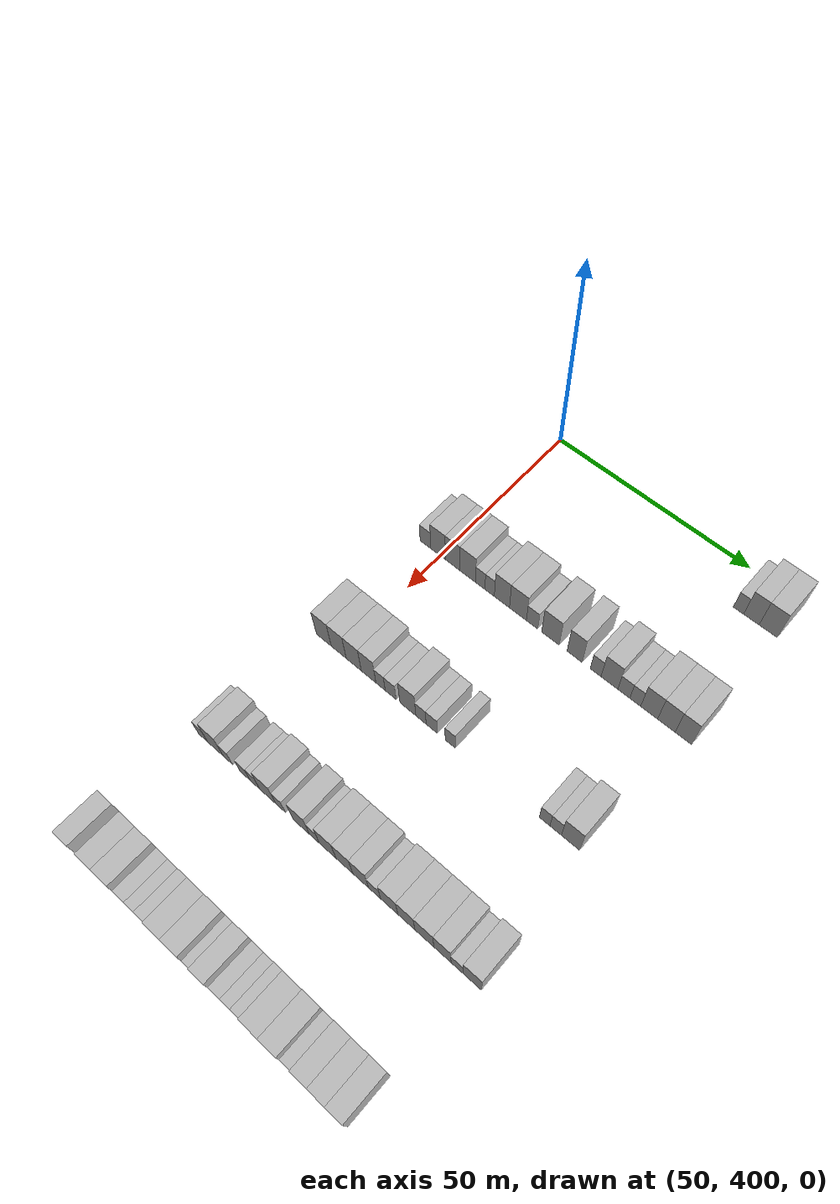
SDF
<sdf version="1.6">
 <world name="default">
  <model name="building_465">
   <static>1</static>
   <pose>55.0000 453.8659 0 0.000000 0.000000 0.000000</pose>
   <link name="link">
    <pose>0 0 3.00 0 0 0</pose>
    <collision name="collision"><geometry><box><size>10.0000 2.4791 6.0000</size></box></geometry></collision>
    <visual name="visual">
     <cast_shadows>0</cast_shadows>
     <geometry><box><size>10.0000 2.4791 6.0000</size></box></geometry>
     <material>
      <script>
       <uri>model://HANNAS_wall/materials/scripts</uri>
       <uri>model://HANNAS_wall/materials/textures</uri>
       <name>vrc/HANNAS_wall</name>
      </script>
     </material>
    </visual>
   </link>
  </model>
  <model name="building_466">
   <static>1</static>
   <pose>55.0000 456.9601 0 0.000000 0.000000 0.000000</pose>
   <link name="link">
    <pose>0 0 4.50 0 0 0</pose>
    <collision name="collision"><geometry><box><size>10.0000 3.7093 9.0000</size></box></geometry></collision>
    <visual name="visual">
     <cast_shadows>0</cast_shadows>
     <geometry><box><size>10.0000 3.7093 9.0000</size></box></geometry>
     <material>
      <script>
       <uri>model://HANNAS_wall/materials/scripts</uri>
       <uri>model://HANNAS_wall/materials/textures</uri>
       <name>vrc/HANNAS_wall</name>
      </script>
     </material>
    </visual>
   </link>
  </model>
  <model name="building_467">
   <static>1</static>
   <pose>55.0000 460.9842 0 0.000000 0.000000 0.000000</pose>
   <link name="link">
    <pose>0 0 4.50 0 0 0</pose>
    <collision name="collision"><geometry><box><size>10.0000 4.3388 9.0000</size></box></geometry></collision>
    <visual name="visual">
     <cast_shadows>0</cast_shadows>
     <geometry><box><size>10.0000 4.3388 9.0000</size></box></geometry>
     <material>
      <script>
       <uri>model://HANNAS_wall/materials/scripts</uri>
       <uri>model://HANNAS_wall/materials/textures</uri>
       <name>vrc/HANNAS_wall</name>
      </script>
     </material>
    </visual>
   </link>
  </model>
  <model name="building_676">
   <static>1</static>
   <pose>85.0000 395.7364 0 0.000000 0.000000 0.000000</pose>
   <link name="link">
    <pose>0 0 3.00 0 0 0</pose>
    <collision name="collision"><geometry><box><size>10.0000 2.9932 6.0000</size></box></geometry></collision>
    <visual name="visual">
     <cast_shadows>0</cast_shadows>
     <geometry><box><size>10.0000 2.9932 6.0000</size></box></geometry>
     <material>
      <script>
       <uri>model://HANNAS_wall/materials/scripts</uri>
       <uri>model://HANNAS_wall/materials/textures</uri>
       <name>vrc/HANNAS_wall</name>
      </script>
     </material>
    </visual>
   </link>
  </model>
  <model name="building_677">
   <static>1</static>
   <pose>85.0000 399.2727 0 0.000000 0.000000 0.000000</pose>
   <link name="link">
    <pose>0 0 4.50 0 0 0</pose>
    <collision name="collision"><geometry><box><size>10.0000 4.0794 9.0000</size></box></geometry></collision>
    <visual name="visual">
     <cast_shadows>0</cast_shadows>
     <geometry><box><size>10.0000 4.0794 9.0000</size></box></geometry>
     <material>
      <script>
       <uri>model://HANNAS_wall/materials/scripts</uri>
       <uri>model://HANNAS_wall/materials/textures</uri>
       <name>vrc/HANNAS_wall</name>
      </script>
     </material>
    </visual>
   </link>
  </model>
  <model name="building_678">
   <static>1</static>
   <pose>85.0000 403.3088 0 0.000000 0.000000 0.000000</pose>
   <link name="link">
    <pose>0 0 4.50 0 0 0</pose>
    <collision name="collision"><geometry><box><size>10.0000 3.9930 9.0000</size></box></geometry></collision>
    <visual name="visual">
     <cast_shadows>0</cast_shadows>
     <geometry><box><size>10.0000 3.9930 9.0000</size></box></geometry>
     <material>
      <script>
       <uri>model://HANNAS_wall/materials/scripts</uri>
       <uri>model://HANNAS_wall/materials/textures</uri>
       <name>vrc/HANNAS_wall</name>
      </script>
     </material>
    </visual>
   </link>
  </model>
  <model name="building_679">
   <static>1</static>
   <pose>85.0000 407.4338 0 0.000000 0.000000 0.000000</pose>
   <link name="link">
    <pose>0 0 4.50 0 0 0</pose>
    <collision name="collision"><geometry><box><size>10.0000 4.2570 9.0000</size></box></geometry></collision>
    <visual name="visual">
     <cast_shadows>0</cast_shadows>
     <geometry><box><size>10.0000 4.2570 9.0000</size></box></geometry>
     <material>
      <script>
       <uri>model://HANNAS_wall/materials/scripts</uri>
       <uri>model://HANNAS_wall/materials/textures</uri>
       <name>vrc/HANNAS_wall</name>
      </script>
     </material>
    </visual>
   </link>
  </model>
  <model name="building_680">
   <static>1</static>
   <pose>85.0000 410.8199 0 0.000000 0.000000 0.000000</pose>
   <link name="link">
    <pose>0 0 3.00 0 0 0</pose>
    <collision name="collision"><geometry><box><size>10.0000 2.5152 6.0000</size></box></geometry></collision>
    <visual name="visual">
     <cast_shadows>0</cast_shadows>
     <geometry><box><size>10.0000 2.5152 6.0000</size></box></geometry>
     <material>
      <script>
       <uri>model://HANNAS_wall/materials/scripts</uri>
       <uri>model://HANNAS_wall/materials/textures</uri>
       <name>vrc/HANNAS_wall</name>
      </script>
     </material>
    </visual>
   </link>
  </model>
  <model name="building_681">
   <static>1</static>
   <pose>85.0000 413.3407 0 0.000000 0.000000 0.000000</pose>
   <link name="link">
    <pose>0 0 3.00 0 0 0</pose>
    <collision name="collision"><geometry><box><size>10.0000 2.5262 6.0000</size></box></geometry></collision>
    <visual name="visual">
     <cast_shadows>0</cast_shadows>
     <geometry><box><size>10.0000 2.5262 6.0000</size></box></geometry>
     <material>
      <script>
       <uri>model://HANNAS_wall/materials/scripts</uri>
       <uri>model://HANNAS_wall/materials/textures</uri>
       <name>vrc/HANNAS_wall</name>
      </script>
     </material>
    </visual>
   </link>
  </model>
  <model name="building_682">
   <static>1</static>
   <pose>85.0000 416.6098 0 0.000000 0.000000 0.000000</pose>
   <link name="link">
    <pose>0 0 4.50 0 0 0</pose>
    <collision name="collision"><geometry><box><size>10.0000 4.0121 9.0000</size></box></geometry></collision>
    <visual name="visual">
     <cast_shadows>0</cast_shadows>
     <geometry><box><size>10.0000 4.0121 9.0000</size></box></geometry>
     <material>
      <script>
       <uri>model://HANNAS_wall/materials/scripts</uri>
       <uri>model://HANNAS_wall/materials/textures</uri>
       <name>vrc/HANNAS_wall</name>
      </script>
     </material>
    </visual>
   </link>
  </model>
  <model name="building_683">
   <static>1</static>
   <pose>85.0000 420.8285 0 0.000000 0.000000 0.000000</pose>
   <link name="link">
    <pose>0 0 4.50 0 0 0</pose>
    <collision name="collision"><geometry><box><size>10.0000 4.4253 9.0000</size></box></geometry></collision>
    <visual name="visual">
     <cast_shadows>0</cast_shadows>
     <geometry><box><size>10.0000 4.4253 9.0000</size></box></geometry>
     <material>
      <script>
       <uri>model://HANNAS_wall/materials/scripts</uri>
       <uri>model://HANNAS_wall/materials/textures</uri>
       <name>vrc/HANNAS_wall</name>
      </script>
     </material>
    </visual>
   </link>
  </model>
  <model name="building_684">
   <static>1</static>
   <pose>85.0000 424.5215 0 0.000000 0.000000 0.000000</pose>
   <link name="link">
    <pose>0 0 3.00 0 0 0</pose>
    <collision name="collision"><geometry><box><size>10.0000 2.9607 6.0000</size></box></geometry></collision>
    <visual name="visual">
     <cast_shadows>0</cast_shadows>
     <geometry><box><size>10.0000 2.9607 6.0000</size></box></geometry>
     <material>
      <script>
       <uri>model://HANNAS_wall/materials/scripts</uri>
       <uri>model://HANNAS_wall/materials/textures</uri>
       <name>vrc/HANNAS_wall</name>
      </script>
     </material>
    </visual>
   </link>
  </model>
  <model name="building_685">
   <static>1</static>
   <pose>85.0000 429.2509 0 0.000000 0.000000 0.000000</pose>
   <link name="link">
    <pose>0 0 4.50 0 0 0</pose>
    <collision name="collision"><geometry><box><size>10.0000 4.4982 9.0000</size></box></geometry></collision>
    <visual name="visual">
     <cast_shadows>0</cast_shadows>
     <geometry><box><size>10.0000 4.4982 9.0000</size></box></geometry>
     <material>
      <script>
       <uri>model://HANNAS_wall/materials/scripts</uri>
       <uri>model://HANNAS_wall/materials/textures</uri>
       <name>vrc/HANNAS_wall</name>
      </script>
     </material>
    </visual>
   </link>
  </model>
  <model name="building_686">
   <static>1</static>
   <pose>85.0000 435.4053 0 0.000000 0.000000 0.000000</pose>
   <link name="link">
    <pose>0 0 4.50 0 0 0</pose>
    <collision name="collision"><geometry><box><size>10.0000 3.8105 9.0000</size></box></geometry></collision>
    <visual name="visual">
     <cast_shadows>0</cast_shadows>
     <geometry><box><size>10.0000 3.8105 9.0000</size></box></geometry>
     <material>
      <script>
       <uri>model://HANNAS_wall/materials/scripts</uri>
       <uri>model://HANNAS_wall/materials/textures</uri>
       <name>vrc/HANNAS_wall</name>
      </script>
     </material>
    </visual>
   </link>
  </model>
  <model name="building_687">
   <static>1</static>
   <pose>85.0000 440.6461 0 0.000000 0.000000 0.000000</pose>
   <link name="link">
    <pose>0 0 3.00 0 0 0</pose>
    <collision name="collision"><geometry><box><size>10.0000 2.6710 6.0000</size></box></geometry></collision>
    <visual name="visual">
     <cast_shadows>0</cast_shadows>
     <geometry><box><size>10.0000 2.6710 6.0000</size></box></geometry>
     <material>
      <script>
       <uri>model://HANNAS_wall/materials/scripts</uri>
       <uri>model://HANNAS_wall/materials/textures</uri>
       <name>vrc/HANNAS_wall</name>
      </script>
     </material>
    </visual>
   </link>
  </model>
  <model name="building_688">
   <static>1</static>
   <pose>85.0000 444.0336 0 0.000000 0.000000 0.000000</pose>
   <link name="link">
    <pose>0 0 4.50 0 0 0</pose>
    <collision name="collision"><geometry><box><size>10.0000 4.1040 9.0000</size></box></geometry></collision>
    <visual name="visual">
     <cast_shadows>0</cast_shadows>
     <geometry><box><size>10.0000 4.1040 9.0000</size></box></geometry>
     <material>
      <script>
       <uri>model://HANNAS_wall/materials/scripts</uri>
       <uri>model://HANNAS_wall/materials/textures</uri>
       <name>vrc/HANNAS_wall</name>
      </script>
     </material>
    </visual>
   </link>
  </model>
  <model name="building_689">
   <static>1</static>
   <pose>85.0000 447.5393 0 0.000000 0.000000 0.000000</pose>
   <link name="link">
    <pose>0 0 3.00 0 0 0</pose>
    <collision name="collision"><geometry><box><size>10.0000 2.9075 6.0000</size></box></geometry></collision>
    <visual name="visual">
     <cast_shadows>0</cast_shadows>
     <geometry><box><size>10.0000 2.9075 6.0000</size></box></geometry>
     <material>
      <script>
       <uri>model://HANNAS_wall/materials/scripts</uri>
       <uri>model://HANNAS_wall/materials/textures</uri>
       <name>vrc/HANNAS_wall</name>
      </script>
     </material>
    </visual>
   </link>
  </model>
  <model name="building_690">
   <static>1</static>
   <pose>85.0000 450.2974 0 0.000000 0.000000 0.000000</pose>
   <link name="link">
    <pose>0 0 3.00 0 0 0</pose>
    <collision name="collision"><geometry><box><size>10.0000 2.6086 6.0000</size></box></geometry></collision>
    <visual name="visual">
     <cast_shadows>0</cast_shadows>
     <geometry><box><size>10.0000 2.6086 6.0000</size></box></geometry>
     <material>
      <script>
       <uri>model://HANNAS_wall/materials/scripts</uri>
       <uri>model://HANNAS_wall/materials/textures</uri>
       <name>vrc/HANNAS_wall</name>
      </script>
     </material>
    </visual>
   </link>
  </model>
  <model name="building_691">
   <static>1</static>
   <pose>85.0000 453.6111 0 0.000000 0.000000 0.000000</pose>
   <link name="link">
    <pose>0 0 4.50 0 0 0</pose>
    <collision name="collision"><geometry><box><size>10.0000 4.0189 9.0000</size></box></geometry></collision>
    <visual name="visual">
     <cast_shadows>0</cast_shadows>
     <geometry><box><size>10.0000 4.0189 9.0000</size></box></geometry>
     <material>
      <script>
       <uri>model://HANNAS_wall/materials/scripts</uri>
       <uri>model://HANNAS_wall/materials/textures</uri>
       <name>vrc/HANNAS_wall</name>
      </script>
     </material>
    </visual>
   </link>
  </model>
  <model name="building_692">
   <static>1</static>
   <pose>85.0000 457.6810 0 0.000000 0.000000 0.000000</pose>
   <link name="link">
    <pose>0 0 4.50 0 0 0</pose>
    <collision name="collision"><geometry><box><size>10.0000 4.1208 9.0000</size></box></geometry></collision>
    <visual name="visual">
     <cast_shadows>0</cast_shadows>
     <geometry><box><size>10.0000 4.1208 9.0000</size></box></geometry>
     <material>
      <script>
       <uri>model://HANNAS_wall/materials/scripts</uri>
       <uri>model://HANNAS_wall/materials/textures</uri>
       <name>vrc/HANNAS_wall</name>
      </script>
     </material>
    </visual>
   </link>
  </model>
  <model name="building_693">
   <static>1</static>
   <pose>85.0000 461.6534 0 0.000000 0.000000 0.000000</pose>
   <link name="link">
    <pose>0 0 4.50 0 0 0</pose>
    <collision name="collision"><geometry><box><size>10.0000 3.8239 9.0000</size></box></geometry></collision>
    <visual name="visual">
     <cast_shadows>0</cast_shadows>
     <geometry><box><size>10.0000 3.8239 9.0000</size></box></geometry>
     <material>
      <script>
       <uri>model://HANNAS_wall/materials/scripts</uri>
       <uri>model://HANNAS_wall/materials/textures</uri>
       <name>vrc/HANNAS_wall</name>
      </script>
     </material>
    </visual>
   </link>
  </model>
  <model name="building_902">
   <static>1</static>
   <pose>115.0000 395.5870 0 0.000000 0.000000 0.000000</pose>
   <link name="link">
    <pose>0 0 4.50 0 0 0</pose>
    <collision name="collision"><geometry><box><size>10.0000 4.1374 9.0000</size></box></geometry></collision>
    <visual name="visual">
     <cast_shadows>0</cast_shadows>
     <geometry><box><size>10.0000 4.1374 9.0000</size></box></geometry>
     <material>
      <script>
       <uri>model://HANNAS_wall/materials/scripts</uri>
       <uri>model://HANNAS_wall/materials/textures</uri>
       <name>vrc/HANNAS_wall</name>
      </script>
     </material>
    </visual>
   </link>
  </model>
  <model name="building_903">
   <static>1</static>
   <pose>115.0000 399.7177 0 0.000000 0.000000 0.000000</pose>
   <link name="link">
    <pose>0 0 4.50 0 0 0</pose>
    <collision name="collision"><geometry><box><size>10.0000 4.1240 9.0000</size></box></geometry></collision>
    <visual name="visual">
     <cast_shadows>0</cast_shadows>
     <geometry><box><size>10.0000 4.1240 9.0000</size></box></geometry>
     <material>
      <script>
       <uri>model://HANNAS_wall/materials/scripts</uri>
       <uri>model://HANNAS_wall/materials/textures</uri>
       <name>vrc/HANNAS_wall</name>
      </script>
     </material>
    </visual>
   </link>
  </model>
  <model name="building_904">
   <static>1</static>
   <pose>115.0000 403.8346 0 0.000000 0.000000 0.000000</pose>
   <link name="link">
    <pose>0 0 4.50 0 0 0</pose>
    <collision name="collision"><geometry><box><size>10.0000 4.1097 9.0000</size></box></geometry></collision>
    <visual name="visual">
     <cast_shadows>0</cast_shadows>
     <geometry><box><size>10.0000 4.1097 9.0000</size></box></geometry>
     <material>
      <script>
       <uri>model://HANNAS_wall/materials/scripts</uri>
       <uri>model://HANNAS_wall/materials/textures</uri>
       <name>vrc/HANNAS_wall</name>
      </script>
     </material>
    </visual>
   </link>
  </model>
  <model name="building_905">
   <static>1</static>
   <pose>115.0000 407.8457 0 0.000000 0.000000 0.000000</pose>
   <link name="link">
    <pose>0 0 4.50 0 0 0</pose>
    <collision name="collision"><geometry><box><size>10.0000 3.9125 9.0000</size></box></geometry></collision>
    <visual name="visual">
     <cast_shadows>0</cast_shadows>
     <geometry><box><size>10.0000 3.9125 9.0000</size></box></geometry>
     <material>
      <script>
       <uri>model://HANNAS_wall/materials/scripts</uri>
       <uri>model://HANNAS_wall/materials/textures</uri>
       <name>vrc/HANNAS_wall</name>
      </script>
     </material>
    </visual>
   </link>
  </model>
  <model name="building_906">
   <static>1</static>
   <pose>115.0000 411.0444 0 0.000000 0.000000 0.000000</pose>
   <link name="link">
    <pose>0 0 3.00 0 0 0</pose>
    <collision name="collision"><geometry><box><size>10.0000 2.4851 6.0000</size></box></geometry></collision>
    <visual name="visual">
     <cast_shadows>0</cast_shadows>
     <geometry><box><size>10.0000 2.4851 6.0000</size></box></geometry>
     <material>
      <script>
       <uri>model://HANNAS_wall/materials/scripts</uri>
       <uri>model://HANNAS_wall/materials/textures</uri>
       <name>vrc/HANNAS_wall</name>
      </script>
     </material>
    </visual>
   </link>
  </model>
  <model name="building_907">
   <static>1</static>
   <pose>115.0000 413.7233 0 0.000000 0.000000 0.000000</pose>
   <link name="link">
    <pose>0 0 3.00 0 0 0</pose>
    <collision name="collision"><geometry><box><size>10.0000 2.8728 6.0000</size></box></geometry></collision>
    <visual name="visual">
     <cast_shadows>0</cast_shadows>
     <geometry><box><size>10.0000 2.8728 6.0000</size></box></geometry>
     <material>
      <script>
       <uri>model://HANNAS_wall/materials/scripts</uri>
       <uri>model://HANNAS_wall/materials/textures</uri>
       <name>vrc/HANNAS_wall</name>
      </script>
     </material>
    </visual>
   </link>
  </model>
  <model name="building_908">
   <static>1</static>
   <pose>115.0000 418.2313 0 0.000000 0.000000 0.000000</pose>
   <link name="link">
    <pose>0 0 4.50 0 0 0</pose>
    <collision name="collision"><geometry><box><size>10.0000 4.1431 9.0000</size></box></geometry></collision>
    <visual name="visual">
     <cast_shadows>0</cast_shadows>
     <geometry><box><size>10.0000 4.1431 9.0000</size></box></geometry>
     <material>
      <script>
       <uri>model://HANNAS_wall/materials/scripts</uri>
       <uri>model://HANNAS_wall/materials/textures</uri>
       <name>vrc/HANNAS_wall</name>
      </script>
     </material>
    </visual>
   </link>
  </model>
  <model name="building_909">
   <static>1</static>
   <pose>115.0000 421.6405 0 0.000000 0.000000 0.000000</pose>
   <link name="link">
    <pose>0 0 3.00 0 0 0</pose>
    <collision name="collision"><geometry><box><size>10.0000 2.6754 6.0000</size></box></geometry></collision>
    <visual name="visual">
     <cast_shadows>0</cast_shadows>
     <geometry><box><size>10.0000 2.6754 6.0000</size></box></geometry>
     <material>
      <script>
       <uri>model://HANNAS_wall/materials/scripts</uri>
       <uri>model://HANNAS_wall/materials/textures</uri>
       <name>vrc/HANNAS_wall</name>
      </script>
     </material>
    </visual>
   </link>
  </model>
  <model name="building_910">
   <static>1</static>
   <pose>115.0000 424.4130 0 0.000000 0.000000 0.000000</pose>
   <link name="link">
    <pose>0 0 3.00 0 0 0</pose>
    <collision name="collision"><geometry><box><size>10.0000 2.8697 6.0000</size></box></geometry></collision>
    <visual name="visual">
     <cast_shadows>0</cast_shadows>
     <geometry><box><size>10.0000 2.8697 6.0000</size></box></geometry>
     <material>
      <script>
       <uri>model://HANNAS_wall/materials/scripts</uri>
       <uri>model://HANNAS_wall/materials/textures</uri>
       <name>vrc/HANNAS_wall</name>
      </script>
     </material>
    </visual>
   </link>
  </model>
  <model name="building_911">
   <static>1</static>
   <pose>115.0000 429.1271 0 0.000000 0.000000 0.000000</pose>
   <link name="link">
    <pose>0 0 3.00 0 0 0</pose>
    <collision name="collision"><geometry><box><size>10.0000 2.5583 6.0000</size></box></geometry></collision>
    <visual name="visual">
     <cast_shadows>0</cast_shadows>
     <geometry><box><size>10.0000 2.5583 6.0000</size></box></geometry>
     <material>
      <script>
       <uri>model://HANNAS_wall/materials/scripts</uri>
       <uri>model://HANNAS_wall/materials/textures</uri>
       <name>vrc/HANNAS_wall</name>
      </script>
     </material>
    </visual>
   </link>
  </model>
  <model name="building_912">
   <static>1</static>
   <pose>115.0000 452.1090 0 0.000000 0.000000 0.000000</pose>
   <link name="link">
    <pose>0 0 3.00 0 0 0</pose>
    <collision name="collision"><geometry><box><size>10.0000 2.4685 6.0000</size></box></geometry></collision>
    <visual name="visual">
     <cast_shadows>0</cast_shadows>
     <geometry><box><size>10.0000 2.4685 6.0000</size></box></geometry>
     <material>
      <script>
       <uri>model://HANNAS_wall/materials/scripts</uri>
       <uri>model://HANNAS_wall/materials/textures</uri>
       <name>vrc/HANNAS_wall</name>
      </script>
     </material>
    </visual>
   </link>
  </model>
  <model name="building_913">
   <static>1</static>
   <pose>115.0000 454.6882 0 0.000000 0.000000 0.000000</pose>
   <link name="link">
    <pose>0 0 3.00 0 0 0</pose>
    <collision name="collision"><geometry><box><size>10.0000 2.6899 6.0000</size></box></geometry></collision>
    <visual name="visual">
     <cast_shadows>0</cast_shadows>
     <geometry><box><size>10.0000 2.6899 6.0000</size></box></geometry>
     <material>
      <script>
       <uri>model://HANNAS_wall/materials/scripts</uri>
       <uri>model://HANNAS_wall/materials/textures</uri>
       <name>vrc/HANNAS_wall</name>
      </script>
     </material>
    </visual>
   </link>
  </model>
  <model name="building_914">
   <static>1</static>
   <pose>115.0000 458.1373 0 0.000000 0.000000 0.000000</pose>
   <link name="link">
    <pose>0 0 4.50 0 0 0</pose>
    <collision name="collision"><geometry><box><size>10.0000 4.2083 9.0000</size></box></geometry></collision>
    <visual name="visual">
     <cast_shadows>0</cast_shadows>
     <geometry><box><size>10.0000 4.2083 9.0000</size></box></geometry>
     <material>
      <script>
       <uri>model://HANNAS_wall/materials/scripts</uri>
       <uri>model://HANNAS_wall/materials/textures</uri>
       <name>vrc/HANNAS_wall</name>
      </script>
     </material>
    </visual>
   </link>
  </model>
  <model name="building_1127">
   <static>1</static>
   <pose>145.0000 393.1069 0 0.000000 0.000000 0.000000</pose>
   <link name="link">
    <pose>0 0 3.00 0 0 0</pose>
    <collision name="collision"><geometry><box><size>10.0000 2.6031 6.0000</size></box></geometry></collision>
    <visual name="visual">
     <cast_shadows>0</cast_shadows>
     <geometry><box><size>10.0000 2.6031 6.0000</size></box></geometry>
     <material>
      <script>
       <uri>model://HANNAS_wall/materials/scripts</uri>
       <uri>model://HANNAS_wall/materials/textures</uri>
       <name>vrc/HANNAS_wall</name>
      </script>
     </material>
    </visual>
   </link>
  </model>
  <model name="building_1128">
   <static>1</static>
   <pose>145.0000 396.5897 0 0.000000 0.000000 0.000000</pose>
   <link name="link">
    <pose>0 0 4.50 0 0 0</pose>
    <collision name="collision"><geometry><box><size>10.0000 4.3624 9.0000</size></box></geometry></collision>
    <visual name="visual">
     <cast_shadows>0</cast_shadows>
     <geometry><box><size>10.0000 4.3624 9.0000</size></box></geometry>
     <material>
      <script>
       <uri>model://HANNAS_wall/materials/scripts</uri>
       <uri>model://HANNAS_wall/materials/textures</uri>
       <name>vrc/HANNAS_wall</name>
      </script>
     </material>
    </visual>
   </link>
  </model>
  <model name="building_1129">
   <static>1</static>
   <pose>145.0000 400.0212 0 0.000000 0.000000 0.000000</pose>
   <link name="link">
    <pose>0 0 3.00 0 0 0</pose>
    <collision name="collision"><geometry><box><size>10.0000 2.5007 6.0000</size></box></geometry></collision>
    <visual name="visual">
     <cast_shadows>0</cast_shadows>
     <geometry><box><size>10.0000 2.5007 6.0000</size></box></geometry>
     <material>
      <script>
       <uri>model://HANNAS_wall/materials/scripts</uri>
       <uri>model://HANNAS_wall/materials/textures</uri>
       <name>vrc/HANNAS_wall</name>
      </script>
     </material>
    </visual>
   </link>
  </model>
  <model name="building_1130">
   <static>1</static>
   <pose>145.0000 404.6392 0 0.000000 0.000000 0.000000</pose>
   <link name="link">
    <pose>0 0 3.00 0 0 0</pose>
    <collision name="collision"><geometry><box><size>10.0000 2.7352 6.0000</size></box></geometry></collision>
    <visual name="visual">
     <cast_shadows>0</cast_shadows>
     <geometry><box><size>10.0000 2.7352 6.0000</size></box></geometry>
     <material>
      <script>
       <uri>model://HANNAS_wall/materials/scripts</uri>
       <uri>model://HANNAS_wall/materials/textures</uri>
       <name>vrc/HANNAS_wall</name>
      </script>
     </material>
    </visual>
   </link>
  </model>
  <model name="building_1131">
   <static>1</static>
   <pose>145.0000 407.2774 0 0.000000 0.000000 0.000000</pose>
   <link name="link">
    <pose>0 0 3.00 0 0 0</pose>
    <collision name="collision"><geometry><box><size>10.0000 2.5413 6.0000</size></box></geometry></collision>
    <visual name="visual">
     <cast_shadows>0</cast_shadows>
     <geometry><box><size>10.0000 2.5413 6.0000</size></box></geometry>
     <material>
      <script>
       <uri>model://HANNAS_wall/materials/scripts</uri>
       <uri>model://HANNAS_wall/materials/textures</uri>
       <name>vrc/HANNAS_wall</name>
      </script>
     </material>
    </visual>
   </link>
  </model>
  <model name="building_1132">
   <static>1</static>
   <pose>145.0000 410.6952 0 0.000000 0.000000 0.000000</pose>
   <link name="link">
    <pose>0 0 4.50 0 0 0</pose>
    <collision name="collision"><geometry><box><size>10.0000 4.2943 9.0000</size></box></geometry></collision>
    <visual name="visual">
     <cast_shadows>0</cast_shadows>
     <geometry><box><size>10.0000 4.2943 9.0000</size></box></geometry>
     <material>
      <script>
       <uri>model://HANNAS_wall/materials/scripts</uri>
       <uri>model://HANNAS_wall/materials/textures</uri>
       <name>vrc/HANNAS_wall</name>
      </script>
     </material>
    </visual>
   </link>
  </model>
  <model name="building_1133">
   <static>1</static>
   <pose>145.0000 414.0902 0 0.000000 0.000000 0.000000</pose>
   <link name="link">
    <pose>0 0 3.00 0 0 0</pose>
    <collision name="collision"><geometry><box><size>10.0000 2.4958 6.0000</size></box></geometry></collision>
    <visual name="visual">
     <cast_shadows>0</cast_shadows>
     <geometry><box><size>10.0000 2.4958 6.0000</size></box></geometry>
     <material>
      <script>
       <uri>model://HANNAS_wall/materials/scripts</uri>
       <uri>model://HANNAS_wall/materials/textures</uri>
       <name>vrc/HANNAS_wall</name>
      </script>
     </material>
    </visual>
   </link>
  </model>
  <model name="building_1134">
   <static>1</static>
   <pose>145.0000 419.4567 0 0.000000 0.000000 0.000000</pose>
   <link name="link">
    <pose>0 0 4.50 0 0 0</pose>
    <collision name="collision"><geometry><box><size>10.0000 4.2370 9.0000</size></box></geometry></collision>
    <visual name="visual">
     <cast_shadows>0</cast_shadows>
     <geometry><box><size>10.0000 4.2370 9.0000</size></box></geometry>
     <material>
      <script>
       <uri>model://HANNAS_wall/materials/scripts</uri>
       <uri>model://HANNAS_wall/materials/textures</uri>
       <name>vrc/HANNAS_wall</name>
      </script>
     </material>
    </visual>
   </link>
  </model>
  <model name="building_1135">
   <static>1</static>
   <pose>145.0000 422.8314 0 0.000000 0.000000 0.000000</pose>
   <link name="link">
    <pose>0 0 3.00 0 0 0</pose>
    <collision name="collision"><geometry><box><size>10.0000 2.5125 6.0000</size></box></geometry></collision>
    <visual name="visual">
     <cast_shadows>0</cast_shadows>
     <geometry><box><size>10.0000 2.5125 6.0000</size></box></geometry>
     <material>
      <script>
       <uri>model://HANNAS_wall/materials/scripts</uri>
       <uri>model://HANNAS_wall/materials/textures</uri>
       <name>vrc/HANNAS_wall</name>
      </script>
     </material>
    </visual>
   </link>
  </model>
  <model name="building_1136">
   <static>1</static>
   <pose>145.0000 426.2048 0 0.000000 0.000000 0.000000</pose>
   <link name="link">
    <pose>0 0 4.50 0 0 0</pose>
    <collision name="collision"><geometry><box><size>10.0000 4.2343 9.0000</size></box></geometry></collision>
    <visual name="visual">
     <cast_shadows>0</cast_shadows>
     <geometry><box><size>10.0000 4.2343 9.0000</size></box></geometry>
     <material>
      <script>
       <uri>model://HANNAS_wall/materials/scripts</uri>
       <uri>model://HANNAS_wall/materials/textures</uri>
       <name>vrc/HANNAS_wall</name>
      </script>
     </material>
    </visual>
   </link>
  </model>
  <model name="building_1137">
   <static>1</static>
   <pose>145.0000 430.3958 0 0.000000 0.000000 0.000000</pose>
   <link name="link">
    <pose>0 0 4.50 0 0 0</pose>
    <collision name="collision"><geometry><box><size>10.0000 4.1477 9.0000</size></box></geometry></collision>
    <visual name="visual">
     <cast_shadows>0</cast_shadows>
     <geometry><box><size>10.0000 4.1477 9.0000</size></box></geometry>
     <material>
      <script>
       <uri>model://HANNAS_wall/materials/scripts</uri>
       <uri>model://HANNAS_wall/materials/textures</uri>
       <name>vrc/HANNAS_wall</name>
      </script>
     </material>
    </visual>
   </link>
  </model>
  <model name="building_1138">
   <static>1</static>
   <pose>145.0000 434.4161 0 0.000000 0.000000 0.000000</pose>
   <link name="link">
    <pose>0 0 4.50 0 0 0</pose>
    <collision name="collision"><geometry><box><size>10.0000 3.8928 9.0000</size></box></geometry></collision>
    <visual name="visual">
     <cast_shadows>0</cast_shadows>
     <geometry><box><size>10.0000 3.8928 9.0000</size></box></geometry>
     <material>
      <script>
       <uri>model://HANNAS_wall/materials/scripts</uri>
       <uri>model://HANNAS_wall/materials/textures</uri>
       <name>vrc/HANNAS_wall</name>
      </script>
     </material>
    </visual>
   </link>
  </model>
  <model name="building_1139">
   <static>1</static>
   <pose>145.0000 437.8063 0 0.000000 0.000000 0.000000</pose>
   <link name="link">
    <pose>0 0 3.00 0 0 0</pose>
    <collision name="collision"><geometry><box><size>10.0000 2.8875 6.0000</size></box></geometry></collision>
    <visual name="visual">
     <cast_shadows>0</cast_shadows>
     <geometry><box><size>10.0000 2.8875 6.0000</size></box></geometry>
     <material>
      <script>
       <uri>model://HANNAS_wall/materials/scripts</uri>
       <uri>model://HANNAS_wall/materials/textures</uri>
       <name>vrc/HANNAS_wall</name>
      </script>
     </material>
    </visual>
   </link>
  </model>
  <model name="building_1140">
   <static>1</static>
   <pose>145.0000 441.3272 0 0.000000 0.000000 0.000000</pose>
   <link name="link">
    <pose>0 0 4.50 0 0 0</pose>
    <collision name="collision"><geometry><box><size>10.0000 4.1544 9.0000</size></box></geometry></collision>
    <visual name="visual">
     <cast_shadows>0</cast_shadows>
     <geometry><box><size>10.0000 4.1544 9.0000</size></box></geometry>
     <material>
      <script>
       <uri>model://HANNAS_wall/materials/scripts</uri>
       <uri>model://HANNAS_wall/materials/textures</uri>
       <name>vrc/HANNAS_wall</name>
      </script>
     </material>
    </visual>
   </link>
  </model>
  <model name="building_1141">
   <static>1</static>
   <pose>145.0000 445.4171 0 0.000000 0.000000 0.000000</pose>
   <link name="link">
    <pose>0 0 4.50 0 0 0</pose>
    <collision name="collision"><geometry><box><size>10.0000 4.0254 9.0000</size></box></geometry></collision>
    <visual name="visual">
     <cast_shadows>0</cast_shadows>
     <geometry><box><size>10.0000 4.0254 9.0000</size></box></geometry>
     <material>
      <script>
       <uri>model://HANNAS_wall/materials/scripts</uri>
       <uri>model://HANNAS_wall/materials/textures</uri>
       <name>vrc/HANNAS_wall</name>
      </script>
     </material>
    </visual>
   </link>
  </model>
  <model name="building_1142">
   <static>1</static>
   <pose>145.0000 449.6283 0 0.000000 0.000000 0.000000</pose>
   <link name="link">
    <pose>0 0 4.50 0 0 0</pose>
    <collision name="collision"><geometry><box><size>10.0000 4.3969 9.0000</size></box></geometry></collision>
    <visual name="visual">
     <cast_shadows>0</cast_shadows>
     <geometry><box><size>10.0000 4.3969 9.0000</size></box></geometry>
     <material>
      <script>
       <uri>model://HANNAS_wall/materials/scripts</uri>
       <uri>model://HANNAS_wall/materials/textures</uri>
       <name>vrc/HANNAS_wall</name>
      </script>
     </material>
    </visual>
   </link>
  </model>
  <model name="building_1143">
   <static>1</static>
   <pose>145.0000 453.7994 0 0.000000 0.000000 0.000000</pose>
   <link name="link">
    <pose>0 0 4.50 0 0 0</pose>
    <collision name="collision"><geometry><box><size>10.0000 3.9453 9.0000</size></box></geometry></collision>
    <visual name="visual">
     <cast_shadows>0</cast_shadows>
     <geometry><box><size>10.0000 3.9453 9.0000</size></box></geometry>
     <material>
      <script>
       <uri>model://HANNAS_wall/materials/scripts</uri>
       <uri>model://HANNAS_wall/materials/textures</uri>
       <name>vrc/HANNAS_wall</name>
      </script>
     </material>
    </visual>
   </link>
  </model>
  <model name="building_1144">
   <static>1</static>
   <pose>145.0000 457.1363 0 0.000000 0.000000 0.000000</pose>
   <link name="link">
    <pose>0 0 3.00 0 0 0</pose>
    <collision name="collision"><geometry><box><size>10.0000 2.7285 6.0000</size></box></geometry></collision>
    <visual name="visual">
     <cast_shadows>0</cast_shadows>
     <geometry><box><size>10.0000 2.7285 6.0000</size></box></geometry>
     <material>
      <script>
       <uri>model://HANNAS_wall/materials/scripts</uri>
       <uri>model://HANNAS_wall/materials/textures</uri>
       <name>vrc/HANNAS_wall</name>
      </script>
     </material>
    </visual>
   </link>
  </model>
  <model name="building_1145">
   <static>1</static>
   <pose>145.0000 460.5712 0 0.000000 0.000000 0.000000</pose>
   <link name="link">
    <pose>0 0 4.50 0 0 0</pose>
    <collision name="collision"><geometry><box><size>10.0000 4.1414 9.0000</size></box></geometry></collision>
    <visual name="visual">
     <cast_shadows>0</cast_shadows>
     <geometry><box><size>10.0000 4.1414 9.0000</size></box></geometry>
     <material>
      <script>
       <uri>model://HANNAS_wall/materials/scripts</uri>
       <uri>model://HANNAS_wall/materials/textures</uri>
       <name>vrc/HANNAS_wall</name>
      </script>
     </material>
    </visual>
   </link>
  </model>
  <model name="building_1361">
   <static>1</static>
   <pose>175.0000 392.4312 0 0.000000 0.000000 0.000000</pose>
   <link name="link">
    <pose>0 0 4.50 0 0 0</pose>
    <collision name="collision"><geometry><box><size>10.0000 3.8975 9.0000</size></box></geometry></collision>
    <visual name="visual">
     <cast_shadows>0</cast_shadows>
     <geometry><box><size>10.0000 3.8975 9.0000</size></box></geometry>
     <material>
      <script>
       <uri>model://HANNAS_wall/materials/scripts</uri>
       <uri>model://HANNAS_wall/materials/textures</uri>
       <name>vrc/HANNAS_wall</name>
      </script>
     </material>
    </visual>
   </link>
  </model>
  <model name="building_1362">
   <static>1</static>
   <pose>175.0000 398.4466 0 0.000000 0.000000 0.000000</pose>
   <link name="link">
    <pose>0 0 4.50 0 0 0</pose>
    <collision name="collision"><geometry><box><size>10.0000 4.1333 9.0000</size></box></geometry></collision>
    <visual name="visual">
     <cast_shadows>0</cast_shadows>
     <geometry><box><size>10.0000 4.1333 9.0000</size></box></geometry>
     <material>
      <script>
       <uri>model://HANNAS_wall/materials/scripts</uri>
       <uri>model://HANNAS_wall/materials/textures</uri>
       <name>vrc/HANNAS_wall</name>
      </script>
     </material>
    </visual>
   </link>
  </model>
  <model name="building_1363">
   <static>1</static>
   <pose>175.0000 402.7210 0 0.000000 0.000000 0.000000</pose>
   <link name="link">
    <pose>0 0 4.50 0 0 0</pose>
    <collision name="collision"><geometry><box><size>10.0000 4.4157 9.0000</size></box></geometry></collision>
    <visual name="visual">
     <cast_shadows>0</cast_shadows>
     <geometry><box><size>10.0000 4.4157 9.0000</size></box></geometry>
     <material>
      <script>
       <uri>model://HANNAS_wall/materials/scripts</uri>
       <uri>model://HANNAS_wall/materials/textures</uri>
       <name>vrc/HANNAS_wall</name>
      </script>
     </material>
    </visual>
   </link>
  </model>
  <model name="building_1364">
   <static>1</static>
   <pose>175.0000 406.4286 0 0.000000 0.000000 0.000000</pose>
   <link name="link">
    <pose>0 0 3.00 0 0 0</pose>
    <collision name="collision"><geometry><box><size>10.0000 2.9994 6.0000</size></box></geometry></collision>
    <visual name="visual">
     <cast_shadows>0</cast_shadows>
     <geometry><box><size>10.0000 2.9994 6.0000</size></box></geometry>
     <material>
      <script>
       <uri>model://HANNAS_wall/materials/scripts</uri>
       <uri>model://HANNAS_wall/materials/textures</uri>
       <name>vrc/HANNAS_wall</name>
      </script>
     </material>
    </visual>
   </link>
  </model>
  <model name="building_1365">
   <static>1</static>
   <pose>175.0000 409.1683 0 0.000000 0.000000 0.000000</pose>
   <link name="link">
    <pose>0 0 3.00 0 0 0</pose>
    <collision name="collision"><geometry><box><size>10.0000 2.4801 6.0000</size></box></geometry></collision>
    <visual name="visual">
     <cast_shadows>0</cast_shadows>
     <geometry><box><size>10.0000 2.4801 6.0000</size></box></geometry>
     <material>
      <script>
       <uri>model://HANNAS_wall/materials/scripts</uri>
       <uri>model://HANNAS_wall/materials/textures</uri>
       <name>vrc/HANNAS_wall</name>
      </script>
     </material>
    </visual>
   </link>
  </model>
  <model name="building_1366">
   <static>1</static>
   <pose>175.0000 411.6534 0 0.000000 0.000000 0.000000</pose>
   <link name="link">
    <pose>0 0 3.00 0 0 0</pose>
    <collision name="collision"><geometry><box><size>10.0000 2.4901 6.0000</size></box></geometry></collision>
    <visual name="visual">
     <cast_shadows>0</cast_shadows>
     <geometry><box><size>10.0000 2.4901 6.0000</size></box></geometry>
     <material>
      <script>
       <uri>model://HANNAS_wall/materials/scripts</uri>
       <uri>model://HANNAS_wall/materials/textures</uri>
       <name>vrc/HANNAS_wall</name>
      </script>
     </material>
    </visual>
   </link>
  </model>
  <model name="building_1367">
   <static>1</static>
   <pose>175.0000 416.0402 0 0.000000 0.000000 0.000000</pose>
   <link name="link">
    <pose>0 0 4.50 0 0 0</pose>
    <collision name="collision"><geometry><box><size>10.0000 4.2833 9.0000</size></box></geometry></collision>
    <visual name="visual">
     <cast_shadows>0</cast_shadows>
     <geometry><box><size>10.0000 4.2833 9.0000</size></box></geometry>
     <material>
      <script>
       <uri>model://HANNAS_wall/materials/scripts</uri>
       <uri>model://HANNAS_wall/materials/textures</uri>
       <name>vrc/HANNAS_wall</name>
      </script>
     </material>
    </visual>
   </link>
  </model>
  <model name="building_1368">
   <static>1</static>
   <pose>175.0000 420.3598 0 0.000000 0.000000 0.000000</pose>
   <link name="link">
    <pose>0 0 4.50 0 0 0</pose>
    <collision name="collision"><geometry><box><size>10.0000 4.3559 9.0000</size></box></geometry></collision>
    <visual name="visual">
     <cast_shadows>0</cast_shadows>
     <geometry><box><size>10.0000 4.3559 9.0000</size></box></geometry>
     <material>
      <script>
       <uri>model://HANNAS_wall/materials/scripts</uri>
       <uri>model://HANNAS_wall/materials/textures</uri>
       <name>vrc/HANNAS_wall</name>
      </script>
     </material>
    </visual>
   </link>
  </model>
  <model name="building_1369">
   <static>1</static>
   <pose>175.0000 423.8668 0 0.000000 0.000000 0.000000</pose>
   <link name="link">
    <pose>0 0 3.00 0 0 0</pose>
    <collision name="collision"><geometry><box><size>10.0000 2.6580 6.0000</size></box></geometry></collision>
    <visual name="visual">
     <cast_shadows>0</cast_shadows>
     <geometry><box><size>10.0000 2.6580 6.0000</size></box></geometry>
     <material>
      <script>
       <uri>model://HANNAS_wall/materials/scripts</uri>
       <uri>model://HANNAS_wall/materials/textures</uri>
       <name>vrc/HANNAS_wall</name>
      </script>
     </material>
    </visual>
   </link>
  </model>
  <model name="building_1370">
   <static>1</static>
   <pose>175.0000 427.0878 0 0.000000 0.000000 0.000000</pose>
   <link name="link">
    <pose>0 0 4.50 0 0 0</pose>
    <collision name="collision"><geometry><box><size>10.0000 3.7841 9.0000</size></box></geometry></collision>
    <visual name="visual">
     <cast_shadows>0</cast_shadows>
     <geometry><box><size>10.0000 3.7841 9.0000</size></box></geometry>
     <material>
      <script>
       <uri>model://HANNAS_wall/materials/scripts</uri>
       <uri>model://HANNAS_wall/materials/textures</uri>
       <name>vrc/HANNAS_wall</name>
      </script>
     </material>
    </visual>
   </link>
  </model>
  <model name="building_1371">
   <static>1</static>
   <pose>175.0000 430.4067 0 0.000000 0.000000 0.000000</pose>
   <link name="link">
    <pose>0 0 3.00 0 0 0</pose>
    <collision name="collision"><geometry><box><size>10.0000 2.8538 6.0000</size></box></geometry></collision>
    <visual name="visual">
     <cast_shadows>0</cast_shadows>
     <geometry><box><size>10.0000 2.8538 6.0000</size></box></geometry>
     <material>
      <script>
       <uri>model://HANNAS_wall/materials/scripts</uri>
       <uri>model://HANNAS_wall/materials/textures</uri>
       <name>vrc/HANNAS_wall</name>
      </script>
     </material>
    </visual>
   </link>
  </model>
  <model name="building_1372">
   <static>1</static>
   <pose>175.0000 433.0339 0 0.000000 0.000000 0.000000</pose>
   <link name="link">
    <pose>0 0 3.00 0 0 0</pose>
    <collision name="collision"><geometry><box><size>10.0000 2.4006 6.0000</size></box></geometry></collision>
    <visual name="visual">
     <cast_shadows>0</cast_shadows>
     <geometry><box><size>10.0000 2.4006 6.0000</size></box></geometry>
     <material>
      <script>
       <uri>model://HANNAS_wall/materials/scripts</uri>
       <uri>model://HANNAS_wall/materials/textures</uri>
       <name>vrc/HANNAS_wall</name>
      </script>
     </material>
    </visual>
   </link>
  </model>
  <model name="building_1373">
   <static>1</static>
   <pose>175.0000 435.6042 0 0.000000 0.000000 0.000000</pose>
   <link name="link">
    <pose>0 0 3.00 0 0 0</pose>
    <collision name="collision"><geometry><box><size>10.0000 2.7399 6.0000</size></box></geometry></collision>
    <visual name="visual">
     <cast_shadows>0</cast_shadows>
     <geometry><box><size>10.0000 2.7399 6.0000</size></box></geometry>
     <material>
      <script>
       <uri>model://HANNAS_wall/materials/scripts</uri>
       <uri>model://HANNAS_wall/materials/textures</uri>
       <name>vrc/HANNAS_wall</name>
      </script>
     </material>
    </visual>
   </link>
  </model>
  <model name="building_1374">
   <static>1</static>
   <pose>175.0000 439.2226 0 0.000000 0.000000 0.000000</pose>
   <link name="link">
    <pose>0 0 4.50 0 0 0</pose>
    <collision name="collision"><geometry><box><size>10.0000 4.4969 9.0000</size></box></geometry></collision>
    <visual name="visual">
     <cast_shadows>0</cast_shadows>
     <geometry><box><size>10.0000 4.4969 9.0000</size></box></geometry>
     <material>
      <script>
       <uri>model://HANNAS_wall/materials/scripts</uri>
       <uri>model://HANNAS_wall/materials/textures</uri>
       <name>vrc/HANNAS_wall</name>
      </script>
     </material>
    </visual>
   </link>
  </model>
  <model name="building_1375">
   <static>1</static>
   <pose>175.0000 443.5922 0 0.000000 0.000000 0.000000</pose>
   <link name="link">
    <pose>0 0 4.50 0 0 0</pose>
    <collision name="collision"><geometry><box><size>10.0000 4.2423 9.0000</size></box></geometry></collision>
    <visual name="visual">
     <cast_shadows>0</cast_shadows>
     <geometry><box><size>10.0000 4.2423 9.0000</size></box></geometry>
     <material>
      <script>
       <uri>model://HANNAS_wall/materials/scripts</uri>
       <uri>model://HANNAS_wall/materials/textures</uri>
       <name>vrc/HANNAS_wall</name>
      </script>
     </material>
    </visual>
   </link>
  </model>
  <model name="building_1376">
   <static>1</static>
   <pose>175.0000 447.1519 0 0.000000 0.000000 0.000000</pose>
   <link name="link">
    <pose>0 0 3.00 0 0 0</pose>
    <collision name="collision"><geometry><box><size>10.0000 2.8771 6.0000</size></box></geometry></collision>
    <visual name="visual">
     <cast_shadows>0</cast_shadows>
     <geometry><box><size>10.0000 2.8771 6.0000</size></box></geometry>
     <material>
      <script>
       <uri>model://HANNAS_wall/materials/scripts</uri>
       <uri>model://HANNAS_wall/materials/textures</uri>
       <name>vrc/HANNAS_wall</name>
      </script>
     </material>
    </visual>
   </link>
  </model>
  <model name="building_1377">
   <static>1</static>
   <pose>175.0000 450.5119 0 0.000000 0.000000 0.000000</pose>
   <link name="link">
    <pose>0 0 4.50 0 0 0</pose>
    <collision name="collision"><geometry><box><size>10.0000 3.8429 9.0000</size></box></geometry></collision>
    <visual name="visual">
     <cast_shadows>0</cast_shadows>
     <geometry><box><size>10.0000 3.8429 9.0000</size></box></geometry>
     <material>
      <script>
       <uri>model://HANNAS_wall/materials/scripts</uri>
       <uri>model://HANNAS_wall/materials/textures</uri>
       <name>vrc/HANNAS_wall</name>
      </script>
     </material>
    </visual>
   </link>
  </model>
  <model name="building_1378">
   <static>1</static>
   <pose>175.0000 454.3988 0 0.000000 0.000000 0.000000</pose>
   <link name="link">
    <pose>0 0 4.50 0 0 0</pose>
    <collision name="collision"><geometry><box><size>10.0000 3.9309 9.0000</size></box></geometry></collision>
    <visual name="visual">
     <cast_shadows>0</cast_shadows>
     <geometry><box><size>10.0000 3.9309 9.0000</size></box></geometry>
     <material>
      <script>
       <uri>model://HANNAS_wall/materials/scripts</uri>
       <uri>model://HANNAS_wall/materials/textures</uri>
       <name>vrc/HANNAS_wall</name>
      </script>
     </material>
    </visual>
   </link>
  </model>
  <model name="building_1379">
   <static>1</static>
   <pose>175.0000 458.2968 0 0.000000 0.000000 0.000000</pose>
   <link name="link">
    <pose>0 0 4.50 0 0 0</pose>
    <collision name="collision"><geometry><box><size>10.0000 3.8651 9.0000</size></box></geometry></collision>
    <visual name="visual">
     <cast_shadows>0</cast_shadows>
     <geometry><box><size>10.0000 3.8651 9.0000</size></box></geometry>
     <material>
      <script>
       <uri>model://HANNAS_wall/materials/scripts</uri>
       <uri>model://HANNAS_wall/materials/textures</uri>
       <name>vrc/HANNAS_wall</name>
      </script>
     </material>
    </visual>
   </link>
  </model>
 </world>
</sdf>
